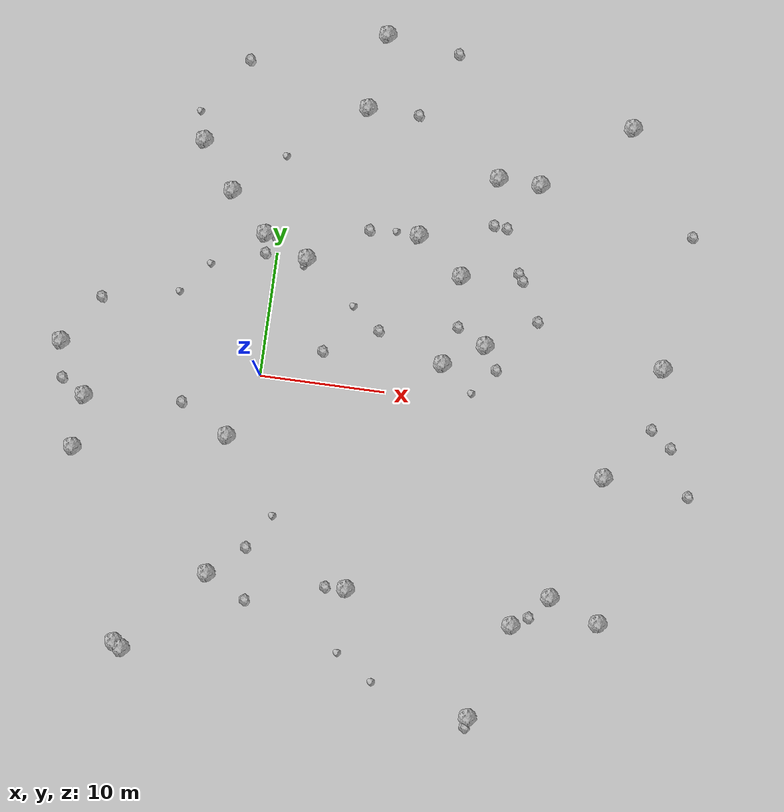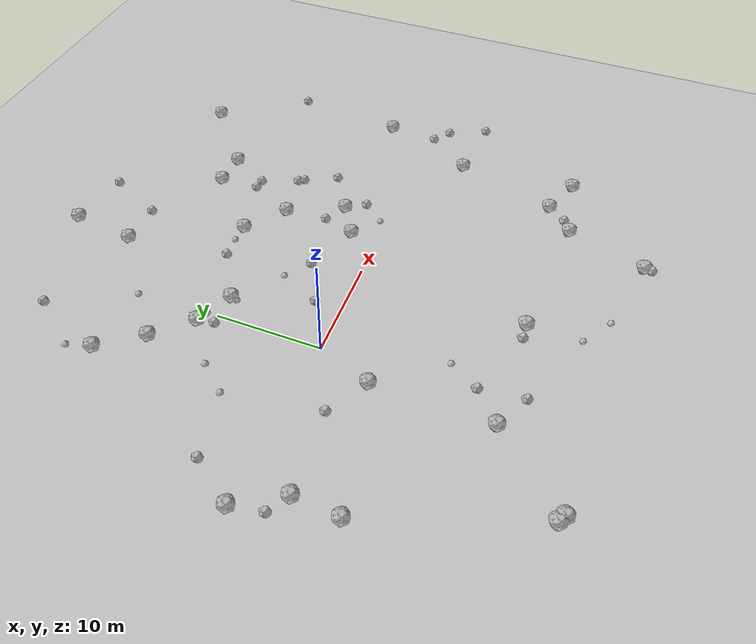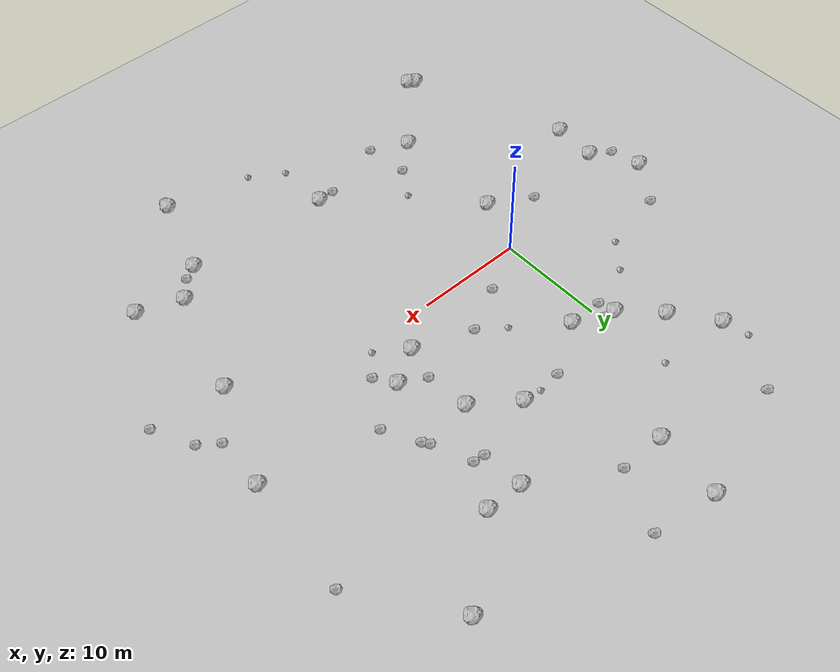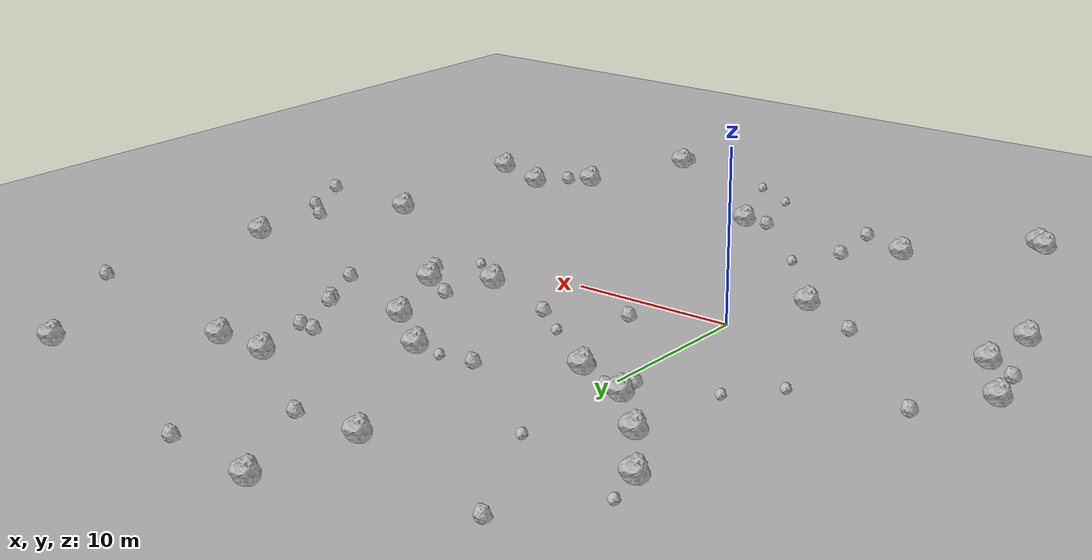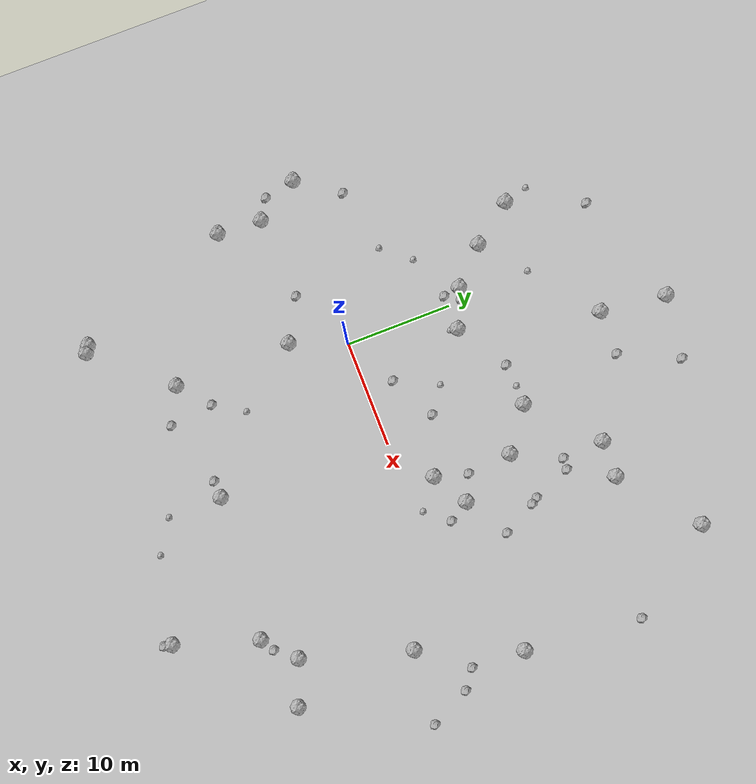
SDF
<sdf version="1.6">
 <world name="default">
  <include><uri>model://custom_ground</uri></include>
  <include><uri>model://sun</uri></include>
  <model name="rock1_0_0">
   <include><uri>model://rock1</uri><pose>-1.9621739160944358 -5.12846441532416 0.5 0 0 0</pose></include>
  </model>
  <model name="rock1_0_1">
   <include><uri>model://rock1</uri><pose>2.406790936257572 9.860046162250065 0.5 0 0 0</pose></include>
  </model>
  <model name="rock1_0_2">
   <include><uri>model://rock1</uri><pose>29.117398881029132 -15.920238617277402 0.5 0 0 0</pose></include>
  </model>
  <model name="rock1_0_3">
   <include><uri>model://rock1</uri><pose>27.1210325515096 23.92502710337751 0.5 0 0 0</pose></include>
  </model>
  <model name="rock1_0_4">
   <include><uri>model://rock1</uri><pose>-1.1807725033879706 11.415316802916273 0.5 0 0 0</pose></include>
  </model>
  <model name="rock1_0_5">
   <include><uri>model://rock1</uri><pose>5.6541422656964215 22.72937844658599 0.5 0 0 0</pose></include>
  </model>
  <model name="rock1_0_6">
   <include><uri>model://rock1</uri><pose>-7.129282654431819 18.36621314639637 0.5 0 0 0</pose></include>
  </model>
  <model name="rock1_0_7">
   <include><uri>model://rock1</uri><pose>-7.822289211458045 -22.803844123577843 0.5 0 0 0</pose></include>
  </model>
  <model name="rock1_0_8">
   <include><uri>model://rock1</uri><pose>-13.699369211179937 -3.442968281475327 0.5 0 0 0</pose></include>
  </model>
  <model name="rock1_0_9">
   <include><uri>model://rock1</uri><pose>17.50076566148968 4.762381917479679 0.5 0 0 0</pose></include>
  </model>
  <model name="rock1_0_10">
   <include><uri>model://rock1</uri><pose>19.881689935994032 -24.525764848351095 0.5 0 0 0</pose></include>
  </model>
  <model name="rock1_0_11">
   <include><uri>model://rock1</uri><pose>22.339258084341587 -16.962382216102966 0.5 0 0 0</pose></include>
  </model>
  <model name="rock1_0_12">
   <include><uri>model://rock1</uri><pose>28.167162883069274 -4.458024683432285 0.5 0 0 0</pose></include>
  </model>
  <model name="rock1_0_13">
   <include><uri>model://rock1</uri><pose>-4.299061655102454 14.55309751136027 0.5 0 0 0</pose></include>
  </model>
  <model name="rock1_0_14">
   <include><uri>model://rock1</uri><pose>-8.444276054512276 -22.397705040708427 0.5 0 0 0</pose></include>
  </model>
  <model name="rock1_0_15">
   <include><uri>model://rock1</uri><pose>31.808324141640128 4.778917780239915 0.5 0 0 0</pose></include>
  </model>
  <model name="rock1_0_16">
   <include><uri>model://rock1</uri><pose>20.268948090623077 18.303766442358793 0.5 0 0 0</pose></include>
  </model>
  <model name="rock1_0_17">
   <include><uri>model://rock1</uri><pose>-16.165521723558744 0.6434234051497967 0.5 0 0 0</pose></include>
  </model>
  <model name="rock1_0_18">
   <include><uri>model://rock1</uri><pose>16.860362134589003 18.395332644553015 0.5 0 0 0</pose></include>
  </model>
  <model name="rock1_0_19">
   <include><uri>model://rock1</uri><pose>14.869998587635642 10.073966771511913 0.5 0 0 0</pose></include>
  </model>
  <model name="rock1_0_20">
   <include><uri>model://rock1</uri><pose>-1.9917595002998851 -16.122421133589306 0.5 0 0 0</pose></include>
  </model>
  <model name="rock1_0_21">
   <include><uri>model://rock1</uri><pose>11.08652024407452 12.92534547751739 0.5 0 0 0</pose></include>
  </model>
  <model name="rock1_0_22">
   <include><uri>model://rock1</uri><pose>6.41970153672424 28.9687192399237 0.5 0 0 0</pose></include>
  </model>
  <model name="rock1_0_23">
   <include><uri>model://rock1</uri><pose>14.305742643929008 2.84870488110775 0.5 0 0 0</pose></include>
  </model>
  <model name="rock1_0_24">
   <include><uri>model://rock1</uri><pose>-13.977301020355085 -7.623493858549075 0.5 0 0 0</pose></include>
  </model>
  <model name="rock1_0_25">
   <include><uri>model://rock1</uri><pose>9.065879604240546 -15.871713998739542 0.5 0 0 0</pose></include>
  </model>
  <model name="rock1_0_26">
   <include><uri>model://rock1</uri><pose>25.116254775108132 -14.393812115499543 0.5 0 0 0</pose></include>
  </model>
  <model name="rock2_0_0">
   <include><uri>model://rock2</uri><pose>-0.9512676352933802 9.863308822249678 0.3 0 0 0</pose></include>
  </model>
  <model name="rock2_0_1">
   <include><uri>model://rock2</uri><pose>16.97694495906959 14.528927955879773 0.3 0 0 0</pose></include>
  </model>
  <model name="rock2_0_2">
   <include><uri>model://rock2</uri><pose>15.161944271087933 5.953042058184316 0.3 0 0 0</pose></include>
  </model>
  <model name="rock2_0_3">
   <include><uri>model://rock2</uri><pose>18.045062901983826 14.422402434548808 0.3 0 0 0</pose></include>
  </model>
  <model name="rock2_0_4">
   <include><uri>model://rock2</uri><pose>21.443353666416357 7.219147712236932 0.3 0 0 0</pose></include>
  </model>
  <model name="rock2_0_5">
   <include><uri>model://rock2</uri><pose>32.93924433009857 15.708748066307216 0.3 0 0 0</pose></include>
  </model>
  <model name="rock2_0_6">
   <include><uri>model://rock2</uri><pose>33.17824723458303 -1.438376478572664 0.3 0 0 0</pose></include>
  </model>
  <model name="rock2_0_7">
   <include><uri>model://rock2</uri><pose>4.698364935544596 2.583484079485629 0.3 0 0 0</pose></include>
  </model>
  <model name="rock2_0_8">
   <include><uri>model://rock2</uri><pose>31.504699357766206 -0.1574933899729949 0.3 0 0 0</pose></include>
  </model>
  <model name="rock2_0_9">
   <include><uri>model://rock2</uri><pose>-15.63876339692409 -2.2654977034302064 0.3 0 0 0</pose></include>
  </model>
  <model name="rock2_0_10">
   <include><uri>model://rock2</uri><pose>-13.468145874060971 4.6086500631072695 0.3 0 0 0</pose></include>
  </model>
  <model name="rock2_0_11">
   <include><uri>model://rock2</uri><pose>1.253100249813567 -17.817384558164395 0.3 0 0 0</pose></include>
  </model>
  <model name="rock2_0_12">
   <include><uri>model://rock2</uri><pose>-0.1685593569451136 11.206101905887238 0.3 0 0 0</pose></include>
  </model>
  <model name="rock2_0_13">
   <include><uri>model://rock2</uri><pose>23.62815286496864 -16.203150621133094 0.3 0 0 0</pose></include>
  </model>
  <model name="rock2_0_14">
   <include><uri>model://rock2</uri><pose>8.920990005157144 4.820872615915569 0.3 0 0 0</pose></include>
  </model>
  <model name="rock2_0_15">
   <include><uri>model://rock2</uri><pose>12.373455651785306 28.14781990464774 0.3 0 0 0</pose></include>
  </model>
  <model name="rock2_0_16">
   <include><uri>model://rock2</uri><pose>19.82964736904985 10.332701703366887 0.3 0 0 0</pose></include>
  </model>
  <model name="rock2_0_17">
   <include><uri>model://rock2</uri><pose>-5.901046278079189 -2.923629163254514 0.3 0 0 0</pose></include>
  </model>
  <model name="rock2_0_18">
   <include><uri>model://rock2</uri><pose>7.421296729709439 -15.945529432516876 0.3 0 0 0</pose></include>
  </model>
  <model name="rock2_0_19">
   <include><uri>model://rock2</uri><pose>7.094255123744777 12.83139416339413 0.3 0 0 0</pose></include>
  </model>
  <model name="rock2_0_20">
   <include><uri>model://rock2</uri><pose>18.625219728037443 2.9211246467857706 0.3 0 0 0</pose></include>
  </model>
  <model name="rock2_0_21">
   <include><uri>model://rock2</uri><pose>34.973212671422345 -5.091780913009714 0.3 0 0 0</pose></include>
  </model>
  <model name="rock2_0_22">
   <include><uri>model://rock2</uri><pose>19.447480435190386 10.903040420074426 0.3 0 0 0</pose></include>
  </model>
  <model name="rock2_0_23">
   <include><uri>model://rock2</uri><pose>0.7728389834059328 -13.709550411025578 0.3 0 0 0</pose></include>
  </model>
  <model name="rock2_0_24">
   <include><uri>model://rock2</uri><pose>-4.383618546623795 25.43658825124927 0.3 0 0 0</pose></include>
  </model>
  <model name="rock2_0_25">
   <include><uri>model://rock2</uri><pose>9.80431622182811 22.703249083343465 0.3 0 0 0</pose></include>
  </model>
  <model name="rock2_0_26">
   <include><uri>model://rock2</uri><pose>19.72851872025305 -25.310079171841494 0.3 0 0 0</pose></include>
  </model>
  <model name="rock3_0_0">
   <include><uri>model://rock3</uri><pose>6.6018479703172375 6.504288922836999 0.2 0 0 0</pose></include>
  </model>
  <model name="rock3_0_1">
   <include><uri>model://rock3</uri><pose>-7.814374006917459 20.696946496588026 0.2 0 0 0</pose></include>
  </model>
  <model name="rock3_0_2">
   <include><uri>model://rock3</uri><pose>9.238023524337017 12.988465981211988 0.2 0 0 0</pose></include>
  </model>
  <model name="rock3_0_3">
   <include><uri>model://rock3</uri><pose>-7.382391312254477 5.854208655173693 0.2 0 0 0</pose></include>
  </model>
  <model name="rock3_0_4">
   <include><uri>model://rock3</uri><pose>9.028155708889031 -20.94983233982733 0.2 0 0 0</pose></include>
  </model>
  <model name="rock3_0_5">
   <include><uri>model://rock3</uri><pose>2.4919898050098013 -10.989732105225357 0.2 0 0 0</pose></include>
  </model>
  <model name="rock3_0_6">
   <include><uri>model://rock3</uri><pose>-0.3960625220136009 17.939799829223567 0.2 0 0 0</pose></include>
  </model>
  <model name="rock3_0_7">
   <include><uri>model://rock3</uri><pose>16.87905496667043 0.781960978859729 0.2 0 0 0</pose></include>
  </model>
  <model name="rock3_0_8">
   <include><uri>model://rock3</uri><pose>2.2105484365984474 9.221499371410985 0.2 0 0 0</pose></include>
  </model>
  <model name="rock3_0_9">
   <include><uri>model://rock3</uri><pose>-5.217412860190331 8.42233242045701 0.2 0 0 0</pose></include>
  </model>
  <model name="rock3_0_10">
   <include><uri>model://rock3</uri><pose>11.985189333991364 -22.84885577396585 0.2 0 0 0</pose></include>
  </model>
 </world>
</sdf>
